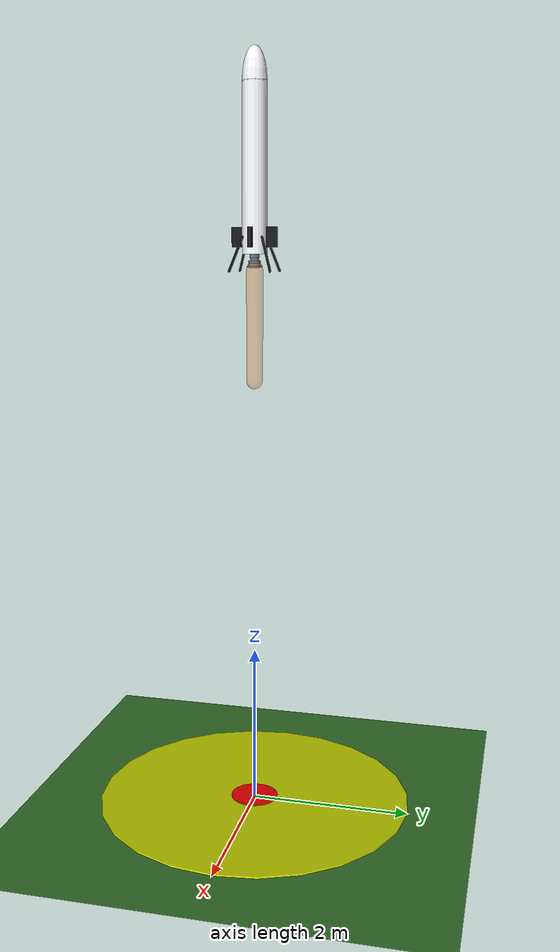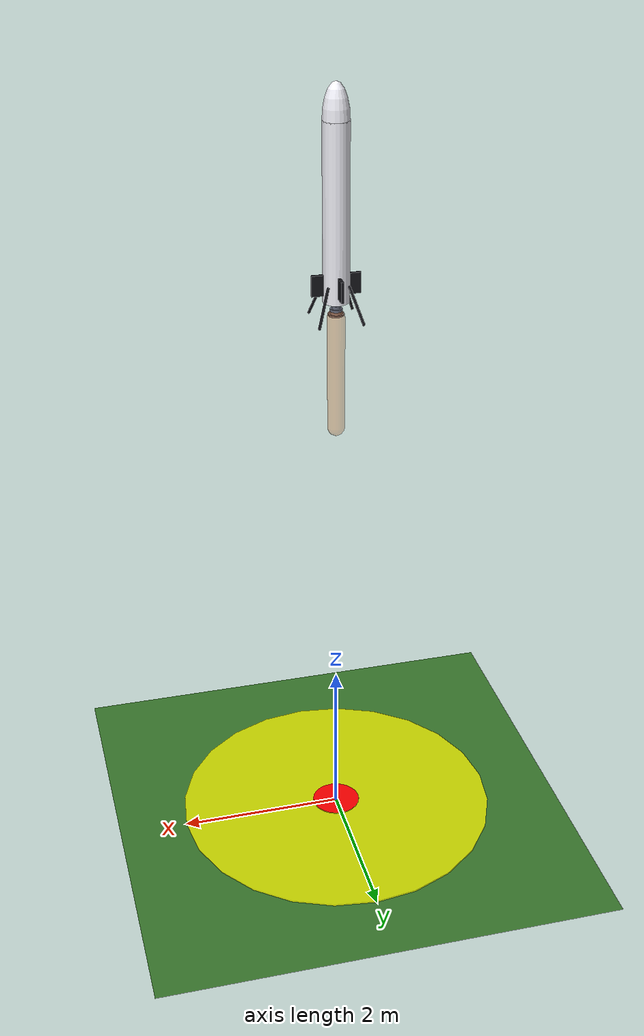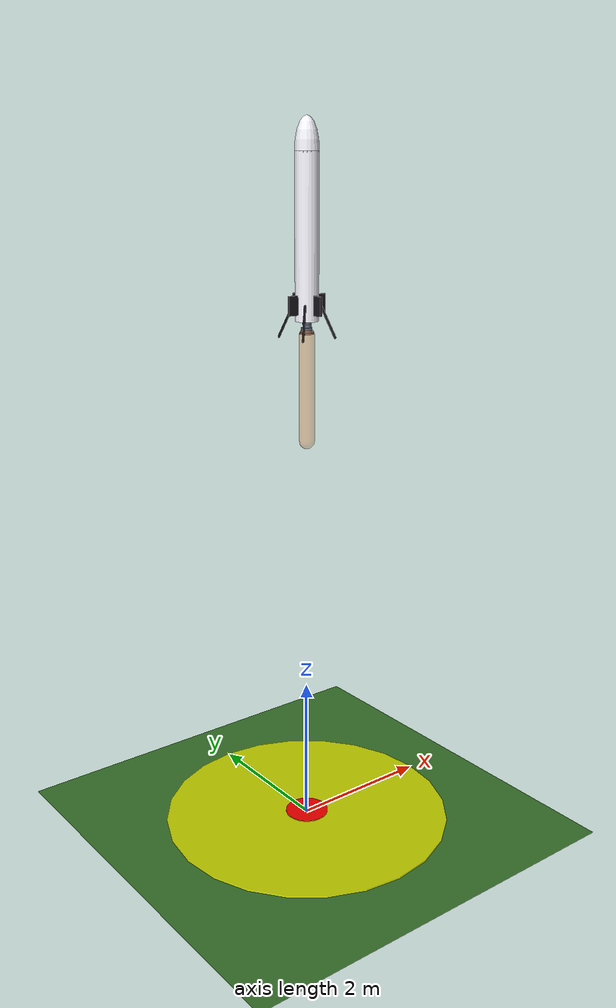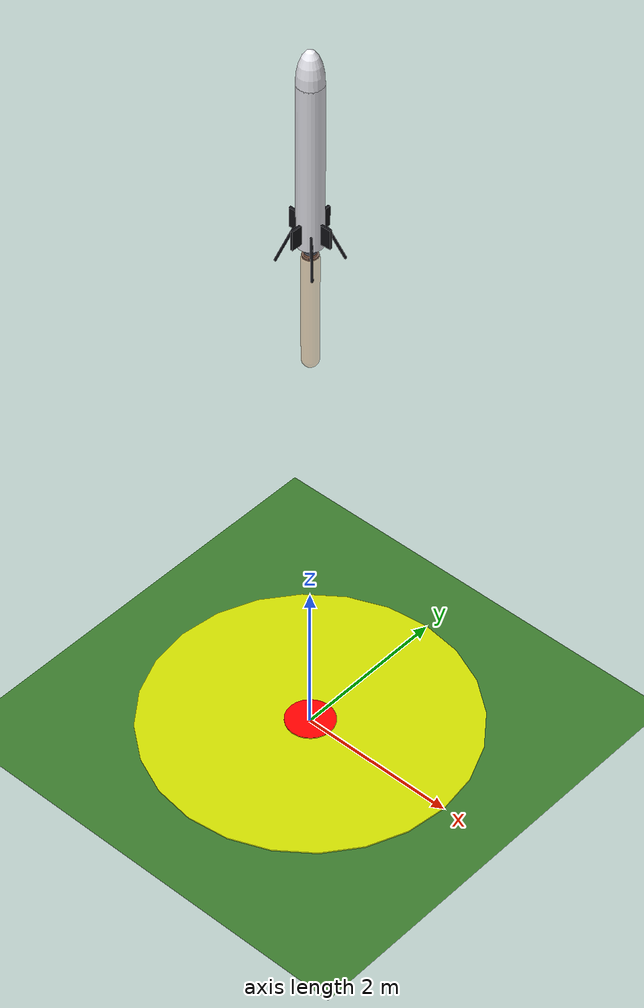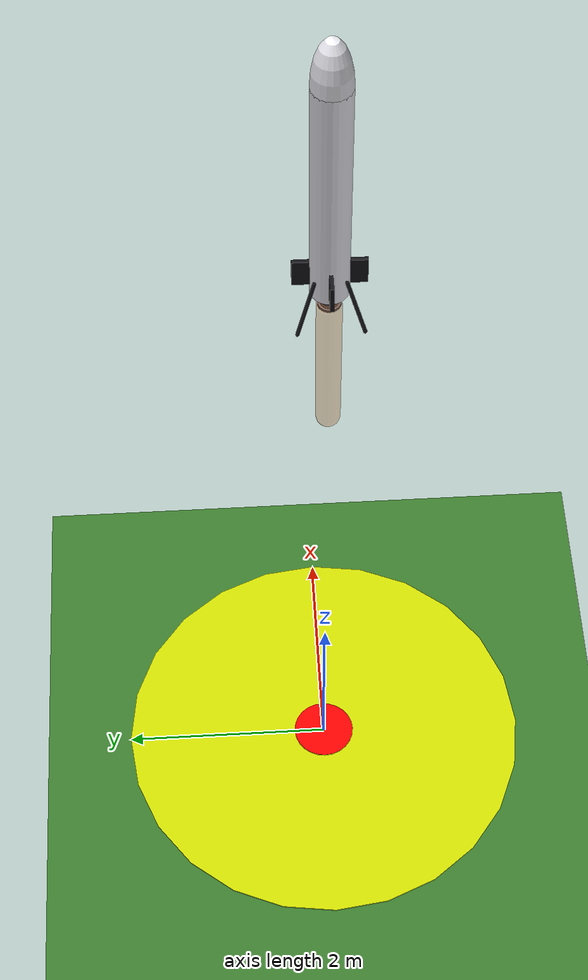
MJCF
<mujoco model="tvc_rocket_3d">
  <compiler angle="radian" inertiafromgeom="true"/>
  <option timestep="0.002" gravity="0 0 -9.81" integrator="RK4">
    <flag constraint="enable" limit="enable"/>
  </option>

  <default>
    <joint armature="0.0" damping="0.2" limited="true"/>
    <geom density="1000" friction="0.8 0.2 0.1"/>
    <motor gear="1" ctrlrange="-1 1"/>
  </default>

  <asset>
    <!-- Enhanced textures for 3D visualization -->
    <texture name="sky" type="skybox" builtin="gradient" rgb1="0.75 0.86 0.97" rgb2="0.94 0.98 1.0" width="1024" height="1024"/>

    <!-- Realistic grass ground texture - procedural checker pattern with natural grass colors -->
    <texture name="grass_texture" type="2d" builtin="checker" rgb1="0.2 0.45 0.15" rgb2="0.25 0.5 0.2" width="512" height="512"/>

    <!-- Enhanced materials for 3D realism -->
    <material name="ground_mat" texture="grass_texture" texrepeat="200 200" reflectance="0.02"/>
    <material name="rocket_white" rgba="0.95 0.95 0.98 1" specular="0.6" shininess="0.8"/>
    <material name="rocket_black" rgba="0.08 0.08 0.1 1" specular="0.4" shininess="0.6"/>
    <material name="engine_metal" rgba="0.4 0.42 0.48 1" specular="0.8" shininess="0.9"/>
    <material name="gimbal_frame" rgba="0.3 0.32 0.38 1" specular="0.7" shininess="0.8"/>
    <material name="flame" rgba="0.98 0.5 0.1 0.7" emission="0.6"/>
    <material name="thrust_trail" rgba="0.9 0.4 0.05 0.4" emission="0.4"/>
  </asset>

  <worldbody>
    <!-- Enhanced ground plane with landing area markers -->
    <body name="ground" pos="0 0 0">
      <geom name="ground_plane" type="plane" size="100 100 1" material="ground_mat"/>

      <!-- Landing pad visualization -->
      <geom name="landing_pad" type="cylinder" pos="0 0 0.01" size="2 0.01" rgba="1 1 0 0.8" contype="0" conaffinity="0"/>
      <geom name="landing_target" type="cylinder" pos="0 0 0.02" size="0.3 0.005" rgba="1 0 0 0.9" contype="0" conaffinity="0"/>
    </body>

    <!-- Realistic 3D rocket with full 6DOF movement - 256 kg total mass -->
    <!-- RESCALED: 2.0m height, 0.3m diameter (Large Drone Scale) -->
    <body name="vehicle" pos="0 0 8">
      <!-- Free joint for full 6DOF movement (position + orientation) -->
      <freejoint name="vehicle_free"/>

      <!-- Main Body: Height 2.0m (half-size 1.0), Radius 0.15m -->
      <geom name="rocket_main" type="cylinder" pos="0 0 0" size="0.15 1.0" material="rocket_white" mass="220.0"/>

      <!-- Nose Cone: Tangent ellipsoid blending at Z=1.0 -->
      <geom name="nose_cone" type="ellipsoid"
            pos="0 0 1.0"
            size="0.15 0.15 0.4"
            material="rocket_white"
            mass="10.0"
            contype="0" conaffinity="0"/>

      <!-- Grid Fins: Scaled down -->
      <geom name="fin_1" type="box" pos="0.20 0 -0.8" size="0.08 0.015 0.12" material="rocket_black" mass="2.5"/>
      <geom name="fin_2" type="box" pos="-0.20 0 -0.8" size="0.08 0.015 0.12" material="rocket_black" mass="2.5"/>
      <geom name="fin_3" type="box" pos="0 0.20 -0.8" size="0.015 0.08 0.12" material="rocket_black" mass="2.5"/>
      <geom name="fin_4" type="box" pos="0 -0.20 -0.8" size="0.015 0.08 0.12" material="rocket_black" mass="2.5"/>

      <!-- Landing Legs: Scaled down -->
      <geom name="leg_1" type="capsule" fromto="0.12 0.12 -0.8 0.25 0.25 -1.2" size="0.015" material="rocket_black" mass="2.0"/>
      <geom name="leg_2" type="capsule" fromto="-0.12 0.12 -0.8 -0.25 0.25 -1.2" size="0.015" material="rocket_black" mass="2.0"/>
      <geom name="leg_3" type="capsule" fromto="-0.12 -0.12 -0.8 -0.25 -0.25 -1.2" size="0.015" material="rocket_black" mass="2.0"/>
      <geom name="leg_4" type="capsule" fromto="0.12 -0.12 -0.8 0.25 -0.25 -1.2" size="0.015" material="rocket_black" mass="2.0"/>

      <!-- Center of mass marker -->
      <site name="vehicle_cg" pos="0 0 0" size="0.03" rgba="1 0 0 1"/>

      <!-- TVC System: Condensed and moved up -->
      <body name="tvc_frame" pos="0 0 -0.8">
        <!-- Engine bay -->
        <geom name="engine_bay" type="cylinder" pos="0 0 0.15" size="0.13 0.1" material="rocket_black" mass="5.0" contype="0" conaffinity="0"/>

        <!-- TVC housing -->
        <geom name="tvc_housing" type="cylinder" pos="0 0 0.08" size="0.14 0.04" material="gimbal_frame" mass="6.0" contype="0" conaffinity="0"/>

        <!-- Actuators -->
        <geom name="actuator_1" type="box" pos="0.12 0 0.08" size="0.02 0.015 0.03" material="engine_metal" mass="0.8" contype="0" conaffinity="0"/>
        <geom name="actuator_2" type="box" pos="-0.12 0 0.08" size="0.02 0.015 0.03" material="engine_metal" mass="0.8" contype="0" conaffinity="0"/>

        <!-- Gimbal X (Pitch) -->
        <body name="gimbal_x" pos="0 0 0.02">
          <joint name="tvc_x" type="hinge" axis="1 0 0" range="-0.14 0.14" limited="true" damping="0.5" stiffness="0" armature="0.02"/>
          <geom name="gimbal_ring_x" type="cylinder" pos="0 0 0" size="0.12 0.01" material="gimbal_frame" mass="2.0" contype="0" conaffinity="0"/>

          <!-- Gimbal Y (Yaw) -->
          <body name="gimbal_y" pos="0 0 0">
            <joint name="tvc_y" type="hinge" axis="0 1 0" range="-0.14 0.14" limited="true" damping="0.5" stiffness="0" armature="0.02"/>
            <geom name="gimbal_ring_y" type="cylinder" pos="0 0 0" size="0.10 0.01" material="gimbal_frame" mass="1.5" contype="0" conaffinity="0"/>

            <!-- Engine: Scaled down Merlin -->
            <body name="engine" pos="0 0 -0.15">
              <geom name="turbopump" type="cylinder" pos="0 0 0" size="0.04 0.04" material="engine_metal" mass="2.0" contype="0" conaffinity="0"/>
              <geom name="chamber" type="cylinder" pos="0 0 -0.06" size="0.06 0.05" material="engine_metal" mass="7.0" contype="0" conaffinity="0"/>
              <geom name="throat" type="cylinder" pos="0 0 -0.10" size="0.03 0.02" material="engine_metal" mass="2.5" contype="0" conaffinity="0"/>

              <!-- Nozzle Bell -->
              <geom name="nozzle_1" type="cylinder" pos="0 0 -0.14" size="0.05 0.03" material="engine_metal" mass="2.0"/>
              <geom name="nozzle_2" type="cylinder" pos="0 0 -0.18" size="0.07 0.03" material="engine_metal" mass="1.5"/>
              <geom name="nozzle_exit" type="cylinder" pos="0 0 -0.22" size="0.09 0.01" material="engine_metal" mass="0.5"/>

              <!-- Exhaust Plumes -->
              <geom name="plume_short" type="capsule" fromto="0 0 -0.25 0 0 -0.5" size="0.05" rgba="0.98 0.5 0.1 0.6" contype="0" conaffinity="0" mass="0.001"/>
              <geom name="plume_medium" type="capsule" fromto="0 0 -0.25 0 0 -0.9" size="0.07" rgba="0.98 0.5 0.1 0.5" contype="0" conaffinity="0" mass="0.001"/>
              <geom name="plume_long" type="capsule" fromto="0 0 -0.25 0 0 -1.4" size="0.08" rgba="0.98 0.5 0.1 0.4" contype="0" conaffinity="0" mass="0.001"/>
              <geom name="plume_outer" type="capsule" fromto="0 0 -0.25 0 0 -1.6" size="0.10" rgba="0.9 0.4 0.05 0.3" contype="0" conaffinity="0" mass="0.001"/>

              <!-- Thrust Site -->
              <site name="thrust_site" pos="0 0 -0.2" size="0.03" rgba="1 0.5 0 1"/>
            </body>
          </body>
        </body>
      </body>
    </body>

    <!-- Default Camera: Moved closer for 2m rocket -->
    <camera name="default_view" mode="fixed" pos="-6 -6 4" xyaxes="1 -1 0 0.5 0.5 1" fovy="50"/>
    <camera name="follow" mode="trackcom" target="vehicle" pos="0 -5 1.5" fovy="60"/>
    <camera name="chase" mode="track" target="vehicle" pos="0 -3 1" fovy="60"/>
    <camera name="tvc_detail" mode="track" target="tvc_frame" pos="0.8 -0.8 -0.5" fovy="40"/>
  </worldbody>

  <actuator>
    <position name="tvc_pitch" joint="tvc_x" kp="5000" kv="200" ctrlrange="-1 1"/>
    <position name="tvc_yaw" joint="tvc_y" kp="5000" kv="200" ctrlrange="-1 1"/>
    <general name="thrust_control" site="thrust_site" ctrlrange="0 1" gear="0 0 8540 0 0 0" dyntype="none" gaintype="fixed" biastype="none"/>
  </actuator>

  <!-- Enhanced sensor suite for 3D state estimation -->
  <sensor>
    <!-- IMU cluster -->
    <accelerometer name="imu_acc" site="vehicle_cg"/>
    <gyro name="imu_gyro" site="vehicle_cg"/>
    <magnetometer name="imu_mag" site="vehicle_cg"/>

    <!-- TVC position feedback -->
    <jointpos name="tvc_x_pos" joint="tvc_x"/>
    <jointpos name="tvc_y_pos" joint="tvc_y"/>
    <jointvel name="tvc_x_vel" joint="tvc_x"/>
    <jointvel name="tvc_y_vel" joint="tvc_y"/>

    <!-- Full 6DOF state -->
    <framepos name="rocket_pos" objtype="body" objname="vehicle"/>
    <framequat name="rocket_orient" objtype="body" objname="vehicle"/>
    <framelinvel name="rocket_linvel" objtype="body" objname="vehicle"/>
    <frameangvel name="rocket_angvel" objtype="body" objname="vehicle"/>

    <!-- Thrust measurement -->
    <force name="thrust_force" site="thrust_site"/>

    <!-- Ground proximity -->
    <rangefinder name="altitude" site="vehicle_cg"/>
  </sensor>

  <!-- Visual enhancements -->
  <visual>
    <global offwidth="1920" offheight="1080" cameraid="0"/>
    <quality shadowsize="2048" offsamples="8"/>
    <map znear="0.1" zfar="100"/>
  </visual>

</mujoco>
